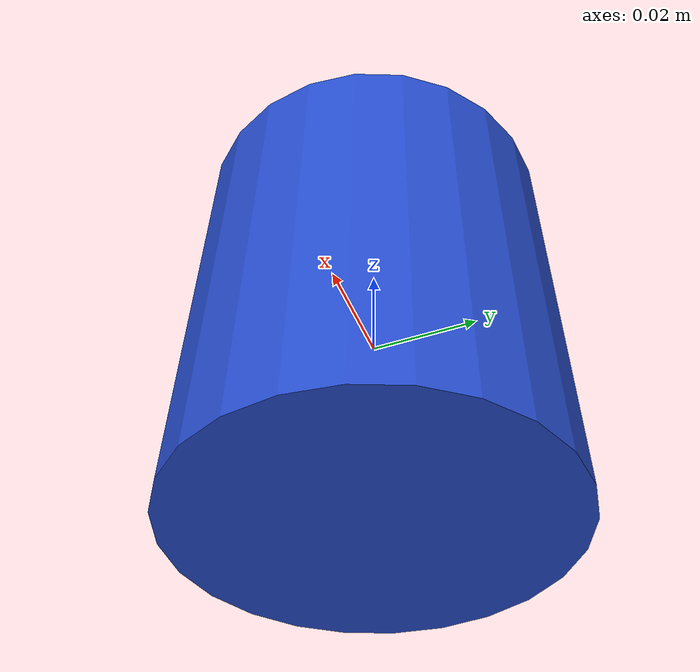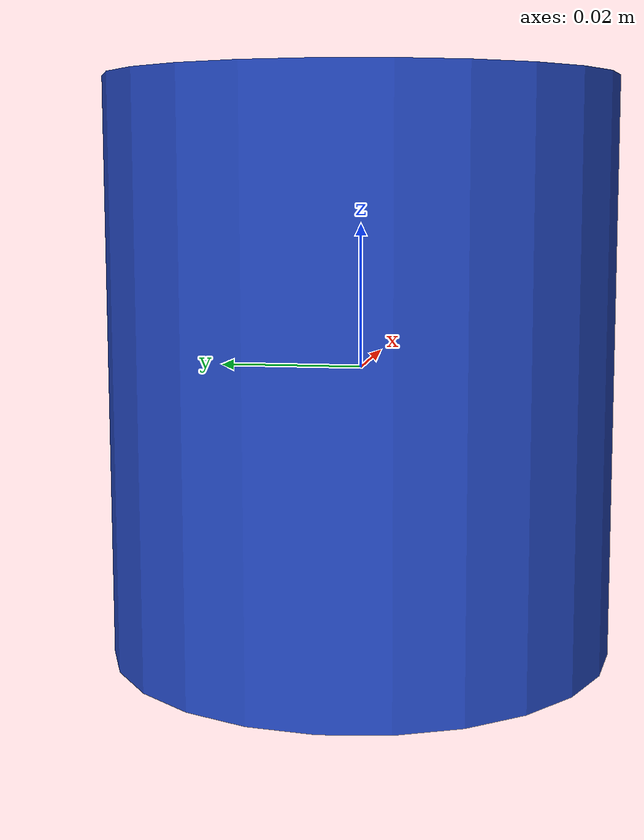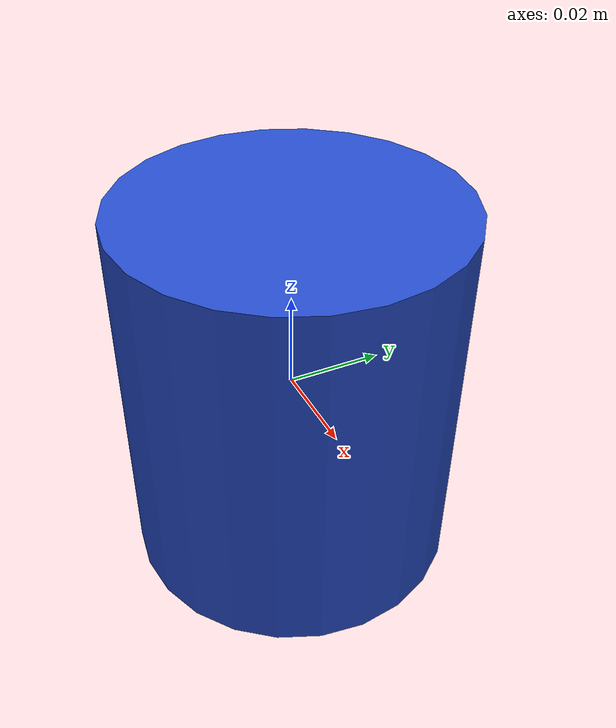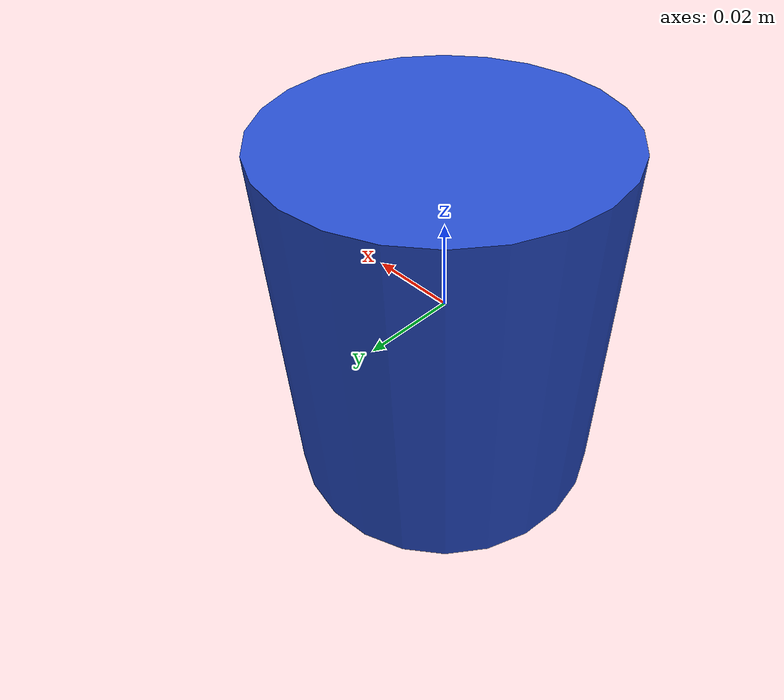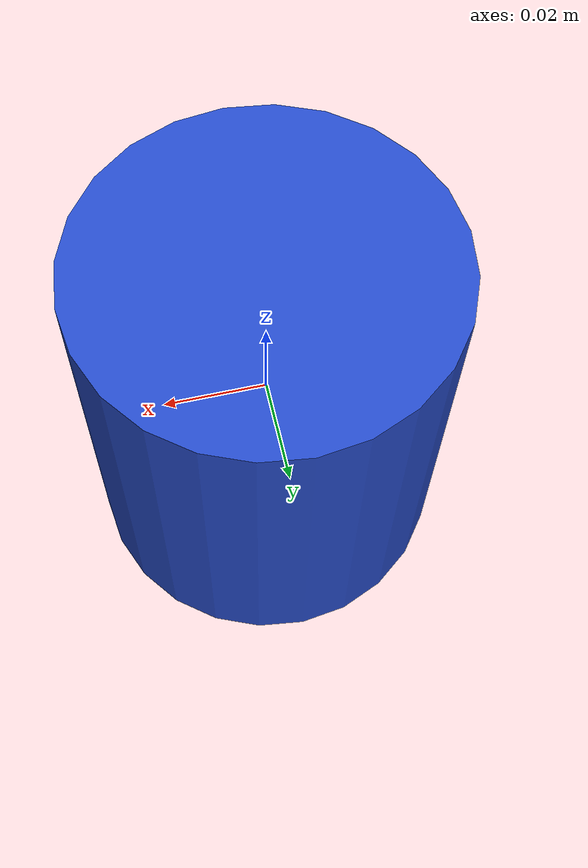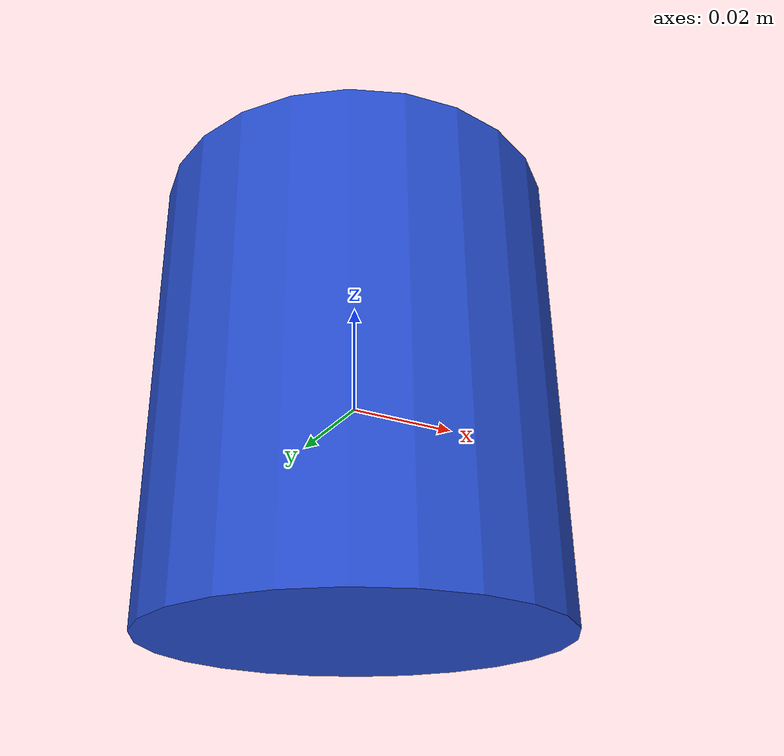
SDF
<sdf version='1.7'>
  <model name='pepper_plant'>
    <link name='peduncle'>
      <inertial>
        <pose>0 0 0 0 -0 0</pose>
        <mass>0.005</mass>
        <inertia>
          <ixx>0.0001</ixx>
          <ixy>0</ixy>
          <ixz>0</ixz>
          <iyy>0.0001</iyy>
          <iyz>0</iyz>
          <izz>0.0001</izz>
        </inertia>
      </inertial>
      <collision name='peduncle_collision'>
        <pose>0 0 0 0 -0 0</pose>
        <geometry>
          <cylinder>
            <length>0.02</length>
            <radius>0.002</radius>
          </cylinder>
        </geometry>
        <surface>
          <contact>
            <ode/>
          </contact>
          <friction>
            <ode/>
          </friction>
        </surface>
      </collision>
      <visual name='peduncle_visual'>
        <pose>0 0 0 0 -0 0</pose>
        <geometry>
          <cylinder>
            <length>0.02</length>
            <radius>0.002</radius>
          </cylinder>
        </geometry>
        <material>
          <script>
            <name>Gazebo/Green</name>
            <uri>file://media/materials/scripts/gazebo.material</uri>
          </script>
        </material>
      </visual>
    </link>
    <link name='fruit'>
      <inertial>
        <pose>0 0 0 0 -0 0</pose>
        <mass>0.15</mass>
        <inertia>
          <ixx>0.001</ixx>
          <ixy>0</ixy>
          <ixz>0</ixz>
          <iyy>0.001</iyy>
          <iyz>0</iyz>
          <izz>0.001</izz>
        </inertia>
      </inertial>
      <collision name='fruit_collision'>
        <pose>0 0 0 0 -0 0</pose>
        <geometry>
          <cylinder>
            <length>0.08</length>
            <radius>0.035</radius>
          </cylinder>
        </geometry>
        <surface>
          <contact>
            <ode/>
          </contact>
          <friction>
            <ode/>
          </friction>
        </surface>
      </collision>
      <visual name='fruit_visual'>
        <pose>0 0 0 0 -0 0</pose>
        <geometry>
          <cylinder>
            <length>0.08</length>
            <radius>0.035</radius>
          </cylinder>
        </geometry>
        <material>
          <script>
            <name>Gazebo/Blue</name>
            <uri>file://media/materials/scripts/gazebo.material</uri>
          </script>
        </material>
      </visual>
    </link>
    <joint name="breakable" type="revolute">
      <parent>peduncle</parent>
      <child>fruit</child>
      <axis>
        <xyz>0 0 1</xyz>
        <limit>
          <lower>0.0</lower>
          <upper>0.0</upper>
        </limit>
        <use_parent_model_frame>true</use_parent_model_frame>
      </axis>
      <physics>
        <ode>
          <erp>1</erp>
          <cfm>1</cfm>
        </ode>
      </physics>
      <sensor name="force_torque" type="force_torque">
        <always_on>true</always_on>
        <update_rate>1000</update_rate>
        <plugin name="breakable_0_0" filename="libBreakableJointPlugin.so">
          <breaking_force_N>50</breaking_force_N>
        </plugin>
      </sensor>
    </joint>
  </model>
</sdf>
